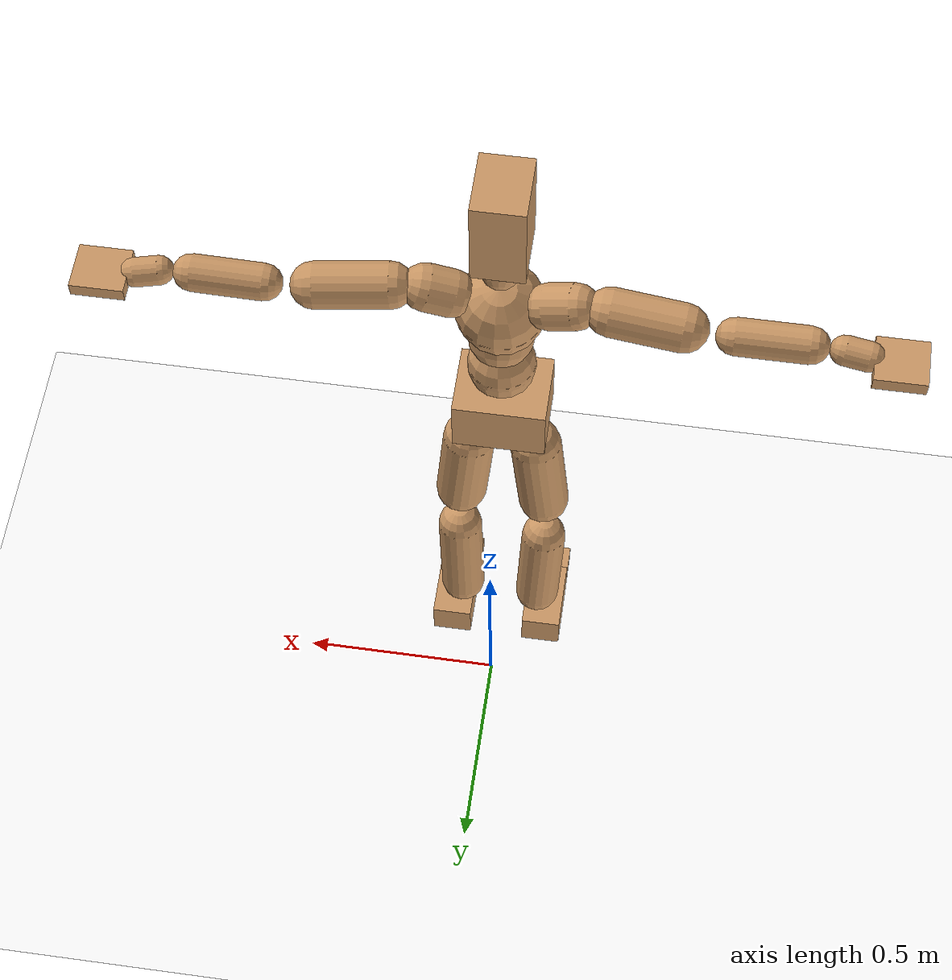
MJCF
<mujoco model="humanoid">
  <option integrator="implicitfast" />

  <visual>
    <global offwidth="1280" offheight="960" />
    <headlight active="1" ambient="0.34 0.34 0.34" diffuse="0.5 0.5 0.5" />
  </visual>

  <default>
    <joint damping="2" stiffness="2" armature="0.01" limited="true" solimplimit="0 .99 .01" />
    <geom condim="1" friction="0.7 0.005 0.0001" solimp=".99 .99 .003" solref="0.015 1" margin="0.001" rgba="0.8 0.6 .4 1" />
    <default class="smplcontact">
      <geom condim="3" friction="1. 0.005 0.0001" solref="0.015 1" solimp="0.98 0.98 0.001" priority="1" />
    </default>
    <default class="stiff_medium">
      <joint stiffness="10" />
    </default>
    <default class="stiff_medium_higher">
      <joint stiffness="50" />
    </default>
    <default class="stiff_high">
      <joint stiffness="100" />
    </default>
  </default>

  <asset>
    <texture type="skybox" builtin="gradient" rgb1="0.99 0.99 0.99" rgb2="0.608 0.828 0.892" width="100" />
    <texture builtin="flat" height="1278" mark="cross" markrgb="1 1 1" name="texgeom" random="0.01" rgb1="0.8 0.6 0.4" rgb2="0.8 0.6 0.4" type="cube" width="127" />
    <texture name="texplane" type="2d" builtin="checker" markrgb="1 1 1" rgb1="0.756 0.772 0.76" rgb2="0.6 0.6 0.6" width="100" height="100" />
    <material name="MatPlane" reflectance="0.5" texture="texplane" texrepeat="1 1" texuniform="true" />
    <material name="geom" texture="texgeom" texuniform="true" />
  </asset>

  <worldbody>
    <light name="tracking_light" pos="0 0 7" dir="0 0 -1" directional="true" cutoff="100" exponent="1" diffuse="1 1 1" specular="0.1 0.1 0.1" mode="trackcom" />
    <camera name="back" pos="0 3 2.4" xyaxes="-1 0 0 0 -1 2" mode="trackcom" />
    <camera name="side" pos="-3 0 2.4" xyaxes="0 -1 0 1 0 2" mode="trackcom" />
    <camera name="front_side" pos="-2.8 -2.8 0.8" xyaxes="0.5 -0.5 0 0.1 0.1 1" mode="trackcom" />
    <geom condim="3" name="floor" pos="0 0 0" rgba="1 1 1 1" size="100 100 .2" type="plane" material="MatPlane" />
    <body name="Pelvis" pos="-0.0018 -0.2233 1.02375" euler="90 0 0">
      <site name="Pelvis" size="0.01" />
      <freejoint name="Pelvis" />
      <geom type="box" pos="-0.0000 -0.0121 -0.0055" size="0.112908 0.0762576 0.0876646" quat="1.0000 0.0000 0.0000 0.0000" density="3165.830099" name="Pelvis" />
      <body name="L_Hip" pos="0.0760191 -0.0999733 -0.00743784">
        <joint name="L_Hip_x" type="hinge" pos="0 0 0" axis="1 0 0" stiffness="13.194738699999998" range="-160.0 22.92" class="stiff_medium" damping="20.649044147317586" armature="0.014362055256930911"/>
        <joint name="L_Hip_y" type="hinge" pos="0 0 0" axis="0 1 0" stiffness="13.182851499999998" range="-70.0 70.0" class="stiff_medium" damping="13.492078416678233" armature="0.013808558793353215"/>
        <joint name="L_Hip_z" type="hinge" pos="0 0 0" axis="0 0 1" stiffness="13.185234099999999" range="-28.65 90.0" class="stiff_medium" damping="13.76146212609762" armature="0.014362872772051824"/>
        <geom type="capsule" density="2040.816327" fromto="0.00754722 -0.082035 -0.00098442 0.0299701 -0.328359 -0.00393768" size="0.0649563" name="L_Hip" />
        <body name="L_Knee" pos="0.0375173 -0.410394 -0.0049221">
          <joint name="L_Knee_x" type="hinge" pos="0 0 0" axis="1 0 0" range="-5.16 171.89" damping="10.953899415005802" armature="0.01426374939642861" stiffness="2.62877744"/>
          <joint name="L_Knee_y" type="hinge" pos="0 0 0" axis="0 1 0" range="-4.58 6.88" damping="10.753581550286581" armature="0.013714310366782513" stiffness="2.63501028"/>
          <joint name="L_Knee_z" type="hinge" pos="0 0 0" axis="0 0 1" range="-6.88 4.58" damping="10.947222760873162" armature="0.014267685415889964" stiffness="2.6248495"/>
          <geom type="capsule" density="1234.567901" fromto="-0.00295326 -0.0870665 -0.00951606 -0.0119224 -0.348266 -0.038283" size="0.0571404" name="L_Knee" />
          <body name="L_Ankle" pos="-0.0148757 -0.435332 -0.0477991">
            <joint name="L_Ankle_x" type="hinge" pos="0 0 0" axis="1 0 0" range="-45.84 45.84" class="stiff_medium" damping="7.993118864081614" armature="0.0137706035724054" stiffness="12.887748899999998"/>
            <joint name="L_Ankle_y" type="hinge" pos="0 0 0" axis="0 1 0" range="-74.48 22.92" class="stiff_medium" damping="3.993175958670596" armature="0.01374729853829439" stiffness="12.887747599999999"/>
            <joint name="L_Ankle_z" type="hinge" pos="0 0 0" axis="0 0 1" range="-4.58 4.58" class="stiff_medium" damping="7.941906606409365" armature="0.013594718855622703" stiffness="12.8877416"/>
            <geom type="box" pos="0.0254855 -0.0261418 0.02647" size="0.0510145 0.0490077 0.089777" quat="1.0000 0.0000 0.0000 0.0000" density="449.071558" name="L_Ankle" class="smplcontact" />
            <body name="L_Toe" pos="0.0288763 -0.061034 0.13049">
              <joint name="L_Toe_x" type="hinge" pos="0 0 0" axis="1 0 0" range="-91.67 22.92" armature="0.013506233843673693" damping="2.638672120411487" stiffness="2.57754702"/>
              <joint name="L_Toe_y" type="hinge" pos="0 0 0" axis="0 1 0" range="-4.58 4.58" armature="0.013399259744653927" damping="2.6282016926070466" stiffness="2.5775469200000005"/>
              <joint name="L_Toe_z" type="hinge" pos="0 0 0" axis="0 0 1" range="-4.58 4.58" armature="0.013182955718647351" damping="2.6069014089825724" stiffness="2.577546"/>
              <geom type="box" pos="-0.0032814 0.0060159 0.0271262" size="0.0504864 0.021124 0.0523875" quat="1.0000 0.0000 0.0000 0.0000" density="423.206892" name="L_Toe" class="smplcontact" />
            </body>
          </body>
        </body>
      </body>
      <body name="R_Hip" pos="-0.0740503 -0.0989889 -0.00470334">
        <joint name="R_Hip_x" type="hinge" pos="0 0 0" axis="1 0 0" stiffness="13.194738699999998" range="-160.0 22.92" class="stiff_medium" damping="20.649044147317586" armature="0.014362055256930911"/>
        <joint name="R_Hip_y" type="hinge" pos="0 0 0" axis="0 1 0" stiffness="13.182851499999998" range="-70.0 70.0" class="stiff_medium" damping="13.492078416678233" armature="0.013808558793353215"/>
        <joint name="R_Hip_z" type="hinge" pos="0 0 0" axis="0 0 1" stiffness="13.185234099999999" range="-90.0 28.65" class="stiff_medium" damping="13.76146212609762" armature="0.014362872772051824"/>
        <geom type="capsule" density="2040.816327" fromto="-0.00842226 -0.0836757 -0.00196884 -0.0334703 -0.334812 -0.00776598" size="0.0640057" name="R_Hip" />
        <body name="R_Knee" pos="-0.0418925 -0.418488 -0.00973482">
          <joint name="R_Knee_x" type="hinge" pos="0 0 0" axis="1 0 0" range="-5.16 171.89" damping="10.953899415005802" armature="0.01426374939642861" stiffness="2.62877744"/>
          <joint name="R_Knee_y" type="hinge" pos="0 0 0" axis="0 1 0" range="-6.88 4.58" damping="10.753581550286581" armature="0.013714310366782513" stiffness="2.63501028"/>
          <joint name="R_Knee_z" type="hinge" pos="0 0 0" axis="0 0 1" range="-4.58 6.88" damping="10.947222760873162" armature="0.014267685415889964" stiffness="2.6248495"/>
          <geom type="capsule" density="1234.567901" fromto="0.00350016 -0.0871759 -0.0092973 0.0137819 -0.348594 -0.0369704" size="0.0571404" name="R_Knee" />
          <body name="R_Ankle" pos="0.017282 -0.43577 -0.0462677">
            <joint name="R_Ankle_x" type="hinge" pos="0 0 0" axis="1 0 0" range="-45.84 45.84" class="stiff_medium" damping="7.993118864081614" armature="0.0137706035724054" stiffness="12.887748899999998"/>
            <joint name="R_Ankle_y" type="hinge" pos="0 0 0" axis="0 1 0" range="-22.92 74.48" class="stiff_medium" damping="3.993175958670596" armature="0.01374729853829439" stiffness="12.887747599999999"/>
            <joint name="R_Ankle_z" type="hinge" pos="0 0 0" axis="0 0 1" range="-4.58 4.58" class="stiff_medium" damping="7.941906606409365" armature="0.013594718855622703" stiffness="12.8877416"/>
            <geom type="box" pos="-0.0231886 -0.0190321 0.0280013" size="0.0510145 0.0504864 0.0913613" quat="1.0000 0.0000 0.0000 0.0000" density="434.700981" name="R_Ankle" class="smplcontact" />
            <body name="R_Toe" pos="-0.0277825 -0.0526118 0.134866">
              <joint name="R_Toe_x" type="hinge" pos="0 0 0" axis="1 0 0" range="-91.67 22.92" armature="0.013506233843673693" damping="2.638672120411487" stiffness="2.57754702"/>
              <joint name="R_Toe_y" type="hinge" pos="0 0 0" axis="0 1 0" range="-4.58 4.58" armature="0.013399259744653927" damping="2.6282016926070466" stiffness="2.5775469200000005"/>
              <joint name="R_Toe_z" type="hinge" pos="0 0 0" axis="0 0 1" range="-4.58 4.58" armature="0.013182955718647351" damping="2.6069014089825724" stiffness="2.577546"/>
              <geom type="box" pos="0.00459396 0.0049221 0.0248293" size="0.050592 0.0228139 0.0520707" quat="1.0000 0.0000 0.0000 0.0000" density="407.384095" name="R_Toe" class="smplcontact" />
            </body>
          </body>
        </body>
      </body>
      <body name="Torso" pos="-0.0026875 0.117175 -0.0287025">
        <joint name="Torso_x" type="hinge" pos="0 0 0" axis="1 0 0" range="-25.78 57.3" class="stiff_medium" damping="19.087234065899796" armature="0.01305491328799454" stiffness="12.4030784"/>
        <joint name="Torso_y" type="hinge" pos="0 0 0" axis="0 1 0" range="-57.3 57.3" class="stiff_high" damping="26.527458762293044" armature="0.014306001974653582" stiffness="122.97392199999999"/>
        <joint name="Torso_z" type="hinge" pos="0 0 0" axis="0 0 1" range="-34.38 34.38" class="stiff_high" damping="25.862041282560547" armature="0.013486851926014199" stiffness="123.98096734693877"/>
        <geom type="capsule" density="2040.816327" fromto="0.0026875 0.06536 0.0005375 0.003225 0.0798725 0.000645" size="0.0812218" name="Torso" />
        <body name="Spine" pos="0.0059125 0.14534 0.0011825">
          <joint name="Spine_x" type="hinge" pos="0 0 0" axis="1 0 0" stiffness="12.308747599999998" range="-25.78 57.3" class="stiff_medium" damping="18.778509024511553" armature="0.012732856073609236"/>
          <joint name="Spine_y" type="hinge" pos="0 0 0" axis="0 1 0" stiffness="12.293305400000001" range="-57.3 57.3" class="stiff_high" damping="10.612196069256724" armature="0.01431402877266789"/>
          <joint name="Spine_z" type="hinge" pos="0 0 0" axis="0 0 1" stiffness="24.520057199999997" range="-34.38 34.38" class="stiff_high" damping="15.499866589337397" armature="0.013608239523604385"/>
          <geom type="capsule" density="2040.816327" fromto="0.0007525 0.025585 0.012255 0.00086 0.0312825 0.01505" size="0.0797431" name="Spine" />
          <body name="Chest" pos="0.0016125 0.0568675 0.027305">
            <joint name="Chest_x" type="hinge" pos="0 0 0" axis="1 0 0" stiffness="12.178478775510204" range="-25.78 57.3" class="stiff_medium" damping="18.553975876982793" armature="0.012563146192898698"/>
            <joint name="Chest_y" type="hinge" pos="0 0 0" axis="0 1 0" stiffness="12.651375918367346" range="-57.3 57.3" class="stiff_high" damping="10.769275792813058" armature="0.014323701559469904"/>
            <joint name="Chest_z" type="hinge" pos="0 0 0" axis="0 0 1" stiffness="24.329055999999998" range="-34.38 34.38" class="stiff_high" damping="15.486013940070873" armature="0.013690570224165375"/>
            <geom type="capsule" density="2040.816327" fromto="-0.0009675 0.073315 -0.0185975 -0.001075 0.0895475 -0.02279" size="0.105831" name="Chest" />
            <body name="Neck" pos="-0.00301 0.229942 -0.0461175">
              <joint name="Neck_x" type="hinge" pos="0 0 0" axis="1 0 0" range="-28.65 57.3" class="stiff_medium_higher" damping="10.967769260220999" armature="0.011015252001251436" stiffness="54.602456"/>
              <joint name="Neck_y" type="hinge" pos="0 0 0" axis="0 1 0" range="-40.11 40.11" class="stiff_medium_higher" damping="10.99963177319961" armature="0.011108172525434038" stiffness="54.460758"/>
              <joint name="Neck_z" type="hinge" pos="0 0 0" axis="0 0 1" range="-40.11 40.11" class="stiff_medium_higher" damping="10.924611862607046" armature="0.011006091327845966" stiffness="54.21867800000001"/>
              <geom type="capsule" density="1000" fromto="0.001075 0.013975 0.0110725 0.0044075 0.0559 0.0441825" size="0.0460503" name="Neck" />
              <body name="Head" pos="0.00529776 0.066222 0.0522644">
                <joint name="Head_x" type="hinge" pos="0 0 0" axis="1 0 0" range="-28.65 57.3" class="stiff_medium_higher" damping="2.17486746265936" armature="0.010976094191517826" stiffness="53.867619"/>
                <joint name="Head_y" type="hinge" pos="0 0 0" axis="0 1 0" range="-40.11 40.11" class="stiff_medium_higher" damping="2.174865137118896" armature="0.010976067254592338" stiffness="53.867636"/>
                <joint name="Head_z" type="hinge" pos="0 0 0" axis="0 0 1" range="-40.11 40.11" class="stiff_medium_higher" damping="2.174867315468954" armature="0.01097609637353057" stiffness="53.86760100000001"/>
                <geom type="box" pos="-0.00427896 0.0892469 -0.0118181" size="0.0617393 0.11757 0.0774288" quat="1.0000 0.0000 0.0000 0.0000" density="1018.069894" name="Head" />
                <geom type="capsule" name="nose" size="0.020376 0.010188" pos="0 0.071316 0.05094" quat="1 0 0 0" mass="0" contype="0" conaffinity="0" />
              </body>
            </body>
            <body name="L_Thorax" pos="0.0861914 0.133115 -0.0372986">
              <joint name="L_Thorax_x" type="hinge" pos="0 0 0" axis="1 0 0" range="-10.89 4.58" class="stiff_medium_higher" damping="27.11326447505311" armature="0.013956722774549367" stiffness="65.8400545"/>
              <joint name="L_Thorax_y" type="hinge" pos="0 0 0" axis="0 1 0" range="-28.65 17.19" class="stiff_medium_higher" damping="27.522975283899388" armature="0.01436957428260833" stiffness="65.89566899999998"/>
              <joint name="L_Thorax_z" type="hinge" pos="0 0 0" axis="0 0 1" range="-31.51 40.11" class="stiff_medium_higher" damping="27.52311282319053" armature="0.014369947637794379" stiffness="65.8946155"/>
              <geom type="capsule" density="1000" fromto="0.0199072 0.00667218 -0.00196884 0.0796286 0.0266887 -0.00776598" size="0.055028" name="L_Thorax" />
              <body name="L_Shoulder" pos="0.0995358 0.0333609 -0.00973482">
                <joint name="L_Shoulder_x" type="hinge" pos="0 0 0" axis="1 0 0" range="-97.4 97.4" class="stiff_medium" damping="8.084378457935793" armature="0.013792928932522217" stiffness="13.162375399999998"/>
                <joint name="L_Shoulder_y" type="hinge" pos="0 0 0" axis="0 1 0" range="-108.86 80.21" class="stiff_medium" damping="8.250802302934279" armature="0.014354136598393663" stiffness="13.1738522"/>
                <joint name="L_Shoulder_z" type="hinge" pos="0 0 0" axis="0 0 1" range="-97.4 85.94" class="stiff_medium" damping="8.25104633450809" armature="0.014354613054014545" stiffness="13.174194200000002"/>
                <geom type="capsule" density="1000" fromto="0.0567682 -0.00284388 -0.0060159 0.227182 -0.0111568 -0.0240636" size="0.0546055" name="L_Shoulder" />
                <body name="L_Elbow" pos="0.28395 -0.0140006 -0.0300795">
                  <joint name="L_Elbow_x" type="hinge" pos="0 0 0" axis="1 0 0" range="-17.19 4.58" damping="6.664549534244376" armature="0.013534974325857825" stiffness="2.6252710599999993"/>
                  <joint name="L_Elbow_y" type="hinge" pos="0 0 0" axis="0 1 0" range="-180.0 17.19" damping="6.845331623741281" armature="0.014279135320378049" stiffness="2.62528866"/>
                  <joint name="L_Elbow_z" type="hinge" pos="0 0 0" axis="0 0 1" range="-100.84 4.58" damping="6.84560487814114" armature="0.014281634478115576" stiffness="2.6250388199999994"/>
                  <geom type="capsule" density="1000" fromto="0.0544712 0.00196884 -0.00021876 0.218104 0.00787536 -0.00098442" size="0.0427761" name="L_Elbow" />
                  <body name="L_Wrist" pos="0.272575 0.0098442 -0.00131256">
                    <joint name="L_Wrist_x" type="hinge" pos="0 0 0" axis="1 0 0" range="-180.0 22.92" armature="0.013466971181283864" damping="2.6433072637556903" stiffness="2.59415172"/>
                    <joint name="L_Wrist_y" type="hinge" pos="0 0 0" axis="0 1 0" range="-17.19 17.19" armature="0.014030870841308905" damping="2.6993291742210164" stiffness="2.5965523"/>
                    <joint name="L_Wrist_z" type="hinge" pos="0 0 0" axis="0 0 1" range="-22.92 22.92" armature="0.01406214509046314" damping="2.7019332702114127" stiffness="2.59577872"/>
                    <geom type="capsule" density="1000" fromto="0.0183758 -0.00175008 -0.0032814 0.0735034 -0.0071097 -0.0131256" size="0.0335872" name="L_Wrist" class="smplcontact" />
                    <body name="L_Hand" pos="0.0918792 -0.00896916 -0.0162976">
                      <joint name="L_Hand_x" type="hinge" pos="0 0 0" axis="1 0 0" range="-17.19 17.19" armature="0.01318563143132848" damping="2.607168785975738" stiffness="2.5775516"/>
                      <joint name="L_Hand_y" type="hinge" pos="0 0 0" axis="0 1 0" range="-51.57 51.57" armature="0.013645975729091174" damping="2.65228970133528" stiffness="2.57755136"/>
                      <joint name="L_Hand_z" type="hinge" pos="0 0 0" axis="0 0 1" range="-91.67 91.67" armature="0.01376868915109434" damping="2.6641883854362156" stiffness="2.57755102"/>
                      <geom type="box" pos="0.0539243 0.0010938 -0.00634404" size="0.0617877 0.016688 0.0568236" quat="1.0000 0.0000 0.0000 0.0000" density="400.552564" name="L_Hand" class="smplcontact" />
                    </body>
                  </body>
                </body>
              </body>
            </body>
            <body name="R_Thorax" pos="-0.0894728 0.129943 -0.0422207">
              <joint name="R_Thorax_x" type="hinge" pos="0 0 0" axis="1 0 0" range="-10.89 4.58" class="stiff_medium_higher" damping="27.11326447505311" armature="0.013956722774549367" stiffness="65.8400545"/>
              <joint name="R_Thorax_y" type="hinge" pos="0 0 0" axis="0 1 0" range="-17.19 28.65" class="stiff_medium_higher" damping="27.522975283899388" armature="0.01436957428260833" stiffness="65.89566899999998"/>
              <joint name="R_Thorax_z" type="hinge" pos="0 0 0" axis="0 0 1" range="-40.11 31.51" class="stiff_medium_higher" damping="27.52311282319053" armature="0.014369947637794379" stiffness="65.8946155"/>
              <geom type="capsule" density="1000" fromto="-0.021001 0.0071097 -0.00196884 -0.0840038 0.0284388 -0.00798474" size="0.0539718" name="R_Thorax" />
              <body name="R_Shoulder" pos="-0.105005 0.0356579 -0.00995358">
                <joint name="R_Shoulder_x" type="hinge" pos="0 0 0" axis="1 0 0" range="-97.4 97.4" class="stiff_medium" damping="8.084378457935793" armature="0.013792928932522217" stiffness="13.162375399999998"/>
                <joint name="R_Shoulder_y" type="hinge" pos="0 0 0" axis="0 1 0" range="-80.21 108.86" class="stiff_medium" damping="8.250802302934279" armature="0.014354136598393663" stiffness="13.1738522"/>
                <joint name="R_Shoulder_z" type="hinge" pos="0 0 0" axis="0 0 1" range="-85.94 97.4" class="stiff_medium" damping="8.25104633450809" armature="0.014354613054014545" stiffness="13.174194200000002"/>
                <geom type="capsule" density="1000" fromto="-0.0554557 -0.00295326 -0.00470334 -0.222041 -0.0117037 -0.018704" size="0.0560842" name="R_Shoulder" />
                <body name="R_Elbow" pos="-0.277497 -0.0145475 -0.0234073">
                  <joint name="R_Elbow_x" type="hinge" pos="0 0 0" axis="1 0 0" range="-17.19 4.58" damping="6.664549534244376" armature="0.013534974325857825" stiffness="2.6252710599999993"/>
                  <joint name="R_Elbow_y" type="hinge" pos="0 0 0" axis="0 1 0" range="-17.19 180.0" damping="6.845331623741281" armature="0.014279135320378049" stiffness="2.62528866"/>
                  <joint name="R_Elbow_z" type="hinge" pos="0 0 0" axis="0 0 1" range="-4.58 100.84" damping="6.84560487814114" armature="0.014281634478115576" stiffness="2.6250388199999994"/>
                  <geom type="capsule" density="1000" fromto="-0.0558932 0.00175008 -0.00120318 -0.223354 0.00678156 -0.00481272" size="0.043093" name="R_Elbow" />
                  <body name="R_Wrist" pos="-0.279247 0.00853164 -0.00612528">
                    <joint name="R_Wrist_x" type="hinge" pos="0 0 0" axis="1 0 0" range="-180.0 22.92" armature="0.013466971181283864" damping="2.6433072637556903" stiffness="2.59415172"/>
                    <joint name="R_Wrist_y" type="hinge" pos="0 0 0" axis="0 1 0" range="-17.19 17.19" armature="0.014030870841308905" damping="2.6993291742210164" stiffness="2.5965523"/>
                    <joint name="R_Wrist_z" type="hinge" pos="0 0 0" axis="0 0 1" range="-22.92 22.92" armature="0.01406214509046314" damping="2.7019332702114127" stiffness="2.59577872"/>
                    <geom type="capsule" density="1000" fromto="-0.0184852 -0.00131256 -0.00229698 -0.0740503 -0.00535962 -0.00907854" size="0.0344321" name="R_Wrist" class="smplcontact" />
                    <body name="R_Hand" pos="-0.0925355 -0.00667218 -0.0112661">
                      <joint name="R_Hand_x" type="hinge" pos="0 0 0" axis="1 0 0" range="-17.19 17.19" armature="0.01318563143132848" damping="2.607168785975738" stiffness="2.5775516"/>
                      <joint name="R_Hand_y" type="hinge" pos="0 0 0" axis="0 1 0" range="-51.57 51.57" armature="0.013645975729091174" damping="2.65228970133528" stiffness="2.57755136"/>
                      <joint name="R_Hand_z" type="hinge" pos="0 0 0" axis="0 0 1" range="-91.67 91.67" armature="0.01376868915109434" damping="2.6641883854362156" stiffness="2.57755102"/>
                      <geom type="box" pos="-0.0505336 -0.00098442 -0.00864102" size="0.0600978 0.0173217 0.0576685" quat="1.0000 0.0000 0.0000 0.0000" density="403.679611" name="R_Hand" class="smplcontact" />
                    </body>
                  </body>
                </body>
              </body>
            </body>
          </body>
        </body>
      </body>
    </body>
  </worldbody>
  <actuator>
    <general name="L_Hip_x" joint="L_Hip_x" biastype="affine" gainprm="379.1245116418421" biasprm="-284.1153950134688 -237.50529659999998 -2.7532058863090114" ctrllimited="true" ctrlrange="-1 1" forcerange="-475.01059319999996 475.01059319999996" />
    <general name="L_Hip_y" joint="L_Hip_y" biastype="affine" gainprm="289.9060459803563" biasprm="0.0 -237.291327 -2.6984156833356465" ctrllimited="true" ctrlrange="-1 1" forcerange="-474.582654 474.582654" />
    <general name="L_Hip_z" joint="L_Hip_z" biastype="affine" gainprm="245.73977967208128" biasprm="127.06393158771331 -237.33421379999996 -2.7522924252195238" ctrllimited="true" ctrlrange="-1 1" forcerange="-474.6684275999999 474.6684275999999" />
    <general name="L_Knee_x" joint="L_Knee_x" biastype="affine" gainprm="365.54397613279417" biasprm="344.23692256775354 -236.5899696 -2.7384748537514505" ctrllimited="true" ctrlrange="-1 1" forcerange="-473.1799392 473.1799392" />
    <general name="L_Knee_y" joint="L_Knee_y" biastype="affine" gainprm="23.716839406744235" biasprm="4.7599241392244105 -237.1509252 -2.6883953875716453" ctrllimited="true" ctrlrange="-1 1" forcerange="-474.3018504 474.3018504" />
    <general name="L_Knee_z" joint="L_Knee_z" biastype="affine" gainprm="23.62538565062938" biasprm="-4.741569545937834 -236.23645499999998 -2.7368056902182905" ctrllimited="true" ctrlrange="-1 1" forcerange="-472.47290999999996 472.47290999999996" />
    <general name="L_Ankle_x" joint="L_Ankle_x" biastype="affine" gainprm="92.79862725264046" biasprm="0.0 -115.98974009999998 -2.6643729546938713" ctrllimited="true" ctrlrange="-1 1" forcerange="-231.97948019999995 231.97948019999995" />
    <general name="L_Ankle_y" joint="L_Ankle_y" biastype="affine" gainprm="98.58840949690256" biasprm="-52.189100550927066 -115.98972839999999 -2.6621173057803973" ctrllimited="true" ctrlrange="-1 1" forcerange="-231.97945679999998 231.97945679999998" />
    <general name="L_Ankle_z" joint="L_Ankle_z" biastype="affine" gainprm="9.271759862010496" biasprm="0.0 -115.9896744 -2.647302202136455" ctrllimited="true" ctrlrange="-1 1" forcerange="-231.9793488 231.9793488" />
    <general name="L_Toe_x" joint="L_Toe_x" biastype="affine" gainprm="92.79043028253913" biasprm="-55.671019128410556 -92.79169272 -1.0554688481645949" ctrllimited="true" ctrlrange="-1 1" forcerange="-185.58338544 185.58338544" />
    <general name="L_Toe_y" joint="L_Toe_y" biastype="affine" gainprm="7.41740386082998" biasprm="0.0 -92.79168912000002 -1.0512806770428187" ctrllimited="true" ctrlrange="-1 1" forcerange="-185.58337824000003 185.58337824000003" />
    <general name="L_Toe_z" joint="L_Toe_z" biastype="affine" gainprm="7.417401213347017" biasprm="0.0 -92.79165599999999 -1.042760563593029" ctrllimited="true" ctrlrange="-1 1" forcerange="-185.58331199999998 185.58331199999998" />
    <general name="R_Hip_x" joint="R_Hip_x" biastype="affine" gainprm="379.1245116418421" biasprm="-284.1153950134688 -237.50529659999998 -2.7532058863090114" ctrllimited="true" ctrlrange="-1 1" forcerange="-475.01059319999996 475.01059319999996" />
    <general name="R_Hip_y" joint="R_Hip_y" biastype="affine" gainprm="289.9060459803563" biasprm="0.0 -237.291327 -2.6984156833356465" ctrllimited="true" ctrlrange="-1 1" forcerange="-474.582654 474.582654" />
    <general name="R_Hip_z" joint="R_Hip_z" biastype="affine" gainprm="245.73977967208128" biasprm="-127.06393158771331 -237.33421379999996 -2.7522924252195238" ctrllimited="true" ctrlrange="-1 1" forcerange="-474.6684275999999 474.6684275999999" />
    <general name="R_Knee_x" joint="R_Knee_x" biastype="affine" gainprm="365.54397613279417" biasprm="344.23692256775354 -236.5899696 -2.7384748537514505" ctrllimited="true" ctrlrange="-1 1" forcerange="-473.1799392 473.1799392" />
    <general name="R_Knee_y" joint="R_Knee_y" biastype="affine" gainprm="23.716839406744235" biasprm="-4.7599241392244105 -237.1509252 -2.6883953875716453" ctrllimited="true" ctrlrange="-1 1" forcerange="-474.3018504 474.3018504" />
    <general name="R_Knee_z" joint="R_Knee_z" biastype="affine" gainprm="23.62538565062938" biasprm="4.741569545937834 -236.23645499999998 -2.7368056902182905" ctrllimited="true" ctrlrange="-1 1" forcerange="-472.47290999999996 472.47290999999996" />
    <general name="R_Ankle_x" joint="R_Ankle_x" biastype="affine" gainprm="92.79862725264046" biasprm="0.0 -115.98974009999998 -2.6643729546938713" ctrllimited="true" ctrlrange="-1 1" forcerange="-231.97948019999995 231.97948019999995" />
    <general name="R_Ankle_y" joint="R_Ankle_y" biastype="affine" gainprm="98.58840949690256" biasprm="52.189100550927066 -115.98972839999999 -2.6621173057803973" ctrllimited="true" ctrlrange="-1 1" forcerange="-231.97945679999998 231.97945679999998" />
    <general name="R_Ankle_z" joint="R_Ankle_z" biastype="affine" gainprm="9.271759862010496" biasprm="0.0 -115.9896744 -2.647302202136455" ctrllimited="true" ctrlrange="-1 1" forcerange="-231.9793488 231.9793488" />
    <general name="R_Toe_x" joint="R_Toe_x" biastype="affine" gainprm="92.79043028253913" biasprm="-55.671019128410556 -92.79169272 -1.0554688481645949" ctrllimited="true" ctrlrange="-1 1" forcerange="-185.58338544 185.58338544" />
    <general name="R_Toe_y" joint="R_Toe_y" biastype="affine" gainprm="7.41740386082998" biasprm="0.0 -92.79168912000002 -1.0512806770428187" ctrllimited="true" ctrlrange="-1 1" forcerange="-185.58337824000003 185.58337824000003" />
    <general name="R_Toe_z" joint="R_Toe_z" biastype="affine" gainprm="7.417401213347017" biasprm="0.0 -92.79165599999999 -1.042760563593029" ctrllimited="true" ctrlrange="-1 1" forcerange="-185.58331199999998 185.58331199999998" />
    <general name="Torso_x" joint="Torso_x" biastype="affine" gainprm="215.8164728143828" biasprm="81.87933585832143 -297.6738816 -5.089929084239945" ctrllimited="true" ctrlrange="-1 1" forcerange="-446.5108224 446.5108224" />
    <general name="Torso_y" joint="Torso_y" biastype="affine" gainprm="295.1591530328797" biasprm="0.0 -295.1374128 -5.305491752458609" ctrllimited="true" ctrlrange="-1 1" forcerange="-442.7061192 442.7061192" />
    <general name="Torso_z" joint="Torso_z" biastype="affine" gainprm="178.54574393904215" biasprm="0.0 -297.55432163265306 -5.172408256512109" ctrllimited="true" ctrlrange="-1 1" forcerange="-446.3314824489796 446.3314824489796" />
    <general name="Spine_x" joint="Spine_x" biastype="affine" gainprm="214.17509477280242" biasprm="81.25660793498713 -295.4099424 -5.007602406536415" ctrllimited="true" ctrlrange="-1 1" forcerange="-443.11491359999997 443.11491359999997" />
    <general name="Spine_y" joint="Spine_y" biastype="affine" gainprm="295.0610626079346" biasprm="0.0 -295.03932960000003 -5.306098034628362" ctrllimited="true" ctrlrange="-1 1" forcerange="-442.5589944 442.5589944" />
    <general name="Spine_z" joint="Spine_z" biastype="affine" gainprm="176.55741634725854" biasprm="0.0 -294.24068639999996 -5.1666221964457995" ctrllimited="true" ctrlrange="-1 1" forcerange="-441.3610296 441.3610296" />
    <general name="Chest_x" joint="Chest_x" biastype="affine" gainprm="211.90838667724907" biasprm="80.3966339439924 -292.2834906122449 -4.947726900528745" ctrllimited="true" ctrlrange="-1 1" forcerange="-438.4252359183674 438.4252359183674" />
    <general name="Chest_y" joint="Chest_y" biastype="affine" gainprm="303.655388072105" biasprm="0.0 -303.63302204081634 -5.384637896406529" ctrllimited="true" ctrlrange="-1 1" forcerange="-455.4495330612245 455.4495330612245" />
    <general name="Chest_z" joint="Chest_z" biastype="affine" gainprm="175.18210640747478" biasprm="0.0 -291.948672 -5.162004646690291" ctrllimited="true" ctrlrange="-1 1" forcerange="-437.923008 437.923008" />
    <general name="Neck_x" joint="Neck_x" biastype="affine" gainprm="29.48749817019655" biasprm="9.829166056732182 -39.31376832 -0.87742154081768" ctrllimited="true" ctrlrange="-1 1" forcerange="-78.62753664 78.62753664" />
    <general name="Neck_y" joint="Neck_y" biastype="affine" gainprm="27.45024390626341" biasprm="0.0 -39.21174576 -0.8799705418559688" ctrllimited="true" ctrlrange="-1 1" forcerange="-78.42349152 78.42349152" />
    <general name="Neck_z" joint="Neck_z" biastype="affine" gainprm="27.328226598960637" biasprm="0.0 -39.037448160000004 -0.8739689490085637" ctrllimited="true" ctrlrange="-1 1" forcerange="-78.07489632000001 78.07489632000001" />
    <general name="Head_x" joint="Head_x" biastype="affine" gainprm="19.393771306982295" biasprm="6.464590435660765 -25.85645712 -0.869946985063744" ctrllimited="true" ctrlrange="-1 1" forcerange="-51.71291424 51.71291424" />
    <general name="Head_y" joint="Head_y" biastype="affine" gainprm="18.100858932270896" biasprm="0.0 -25.85646528 -0.8699460548475584" ctrllimited="true" ctrlrange="-1 1" forcerange="-51.71293056 51.71293056" />
    <general name="Head_z" joint="Head_z" biastype="affine" gainprm="18.10084717140464" biasprm="0.0 -25.856448480000005 -0.8699469261875816" ctrllimited="true" ctrlrange="-1 1" forcerange="-51.71289696000001 51.71289696000001" />
    <general name="L_Thorax_x" joint="L_Thorax_x" biastype="affine" gainprm="21.332370065039832" biasprm="-8.70118003299298 -158.0161308 -2.169061158004249" ctrllimited="true" ctrlrange="-1 1" forcerange="-316.0322616 316.0322616" />
    <general name="L_Thorax_y" joint="L_Thorax_y" biastype="affine" gainprm="63.26450204808458" biasprm="-15.816125512021145 -158.14960559999997 -2.2018380227119514" ctrllimited="true" ctrlrange="-1 1" forcerange="-316.29921119999995 316.29921119999995" />
    <general name="L_Thorax_z" joint="L_Thorax_z" biastype="affine" gainprm="98.8423036157299" biasprm="11.868804958046315 -158.14707719999998 -2.2018490258552426" ctrllimited="true" ctrlrange="-1 1" forcerange="-316.29415439999997 316.29415439999997" />
    <general name="L_Shoulder_x" joint="L_Shoulder_x" biastype="affine" gainprm="107.40186797882616" biasprm="0.0 -63.17940192 -2.155834255449545" ctrllimited="true" ctrlrange="-1 1" forcerange="-126.35880384 126.35880384" />
    <general name="L_Shoulder_y" joint="L_Shoulder_y" biastype="affine" gainprm="104.33355852545256" biasprm="-15.809787125161135 -63.23449056 -2.2002139474491407" ctrllimited="true" ctrlrange="-1 1" forcerange="-126.46898112 126.46898112" />
    <general name="L_Shoulder_z" joint="L_Shoulder_z" biastype="affine" gainprm="101.17422756738316" biasprm="-6.324079022156723 -63.23613216000001 -2.200279022535491" ctrllimited="true" ctrlrange="-1 1" forcerange="-126.47226432000002 126.47226432000002" />
    <general name="L_Elbow_x" joint="L_Elbow_x" biastype="affine" gainprm="17.954877764368458" biasprm="-10.400138199755919 -94.50975815999998 -1.0663279254791003" ctrllimited="true" ctrlrange="-1 1" forcerange="-189.01951631999995 189.01951631999995" />
    <general name="L_Elbow_y" joint="L_Elbow_y" biastype="affine" gainprm="162.6341792496176" biasprm="-134.2789731914917 -94.51039175999999 -1.095253059798605" ctrllimited="true" ctrlrange="-1 1" forcerange="-189.02078351999998 189.02078351999998" />
    <general name="L_Elbow_z" joint="L_Elbow_z" biastype="affine" gainprm="86.93779377138678" biasprm="-79.38372252355997 -94.50139751999998 -1.0952967805025826" ctrllimited="true" ctrlrange="-1 1" forcerange="-189.00279503999997 189.00279503999997" />
    <general name="L_Wrist_x" joint="L_Wrist_x" biastype="affine" gainprm="27.56251532814242" biasprm="-21.336092586953537 -15.564910320000001 -1.0573229055022761" ctrllimited="true" ctrlrange="-1 1" forcerange="-31.129820640000002 31.129820640000002" />
    <general name="L_Wrist_y" joint="L_Wrist_y" biastype="affine" gainprm="4.674138418185784" biasprm="0.0 -15.5793138 -1.0797316696884065" ctrllimited="true" ctrlrange="-1 1" forcerange="-31.1586276 31.1586276" />
    <general name="L_Wrist_z" joint="L_Wrist_z" biastype="affine" gainprm="6.230327828821893" biasprm="0.0 -15.574672320000001 -1.0807733080845652" ctrllimited="true" ctrlrange="-1 1" forcerange="-31.149344640000002 31.149344640000002" />
    <general name="L_Hand_x" joint="L_Hand_x" biastype="affine" gainprm="4.6399346388733385" biasprm="0.0 -15.465309600000001 -1.0428675143902952" ctrllimited="true" ctrlrange="-1 1" forcerange="-30.930619200000002 30.930619200000002" />
    <general name="L_Hand_y" joint="L_Hand_y" biastype="affine" gainprm="13.919802620524548" biasprm="0.0 -15.465308160000001 -1.0609158805341121" ctrllimited="true" ctrlrange="-1 1" forcerange="-30.930616320000002 30.930616320000002" />
    <general name="L_Hand_z" joint="L_Hand_z" biastype="affine" gainprm="24.74361330046476" biasprm="0.0 -15.465306120000001 -1.0656753541744863" ctrllimited="true" ctrlrange="-1 1" forcerange="-30.930612240000002 30.930612240000002" />
    <general name="R_Thorax_x" joint="R_Thorax_x" biastype="affine" gainprm="21.332370065039832" biasprm="-8.70118003299298 -158.0161308 -2.169061158004249" ctrllimited="true" ctrlrange="-1 1" forcerange="-316.0322616 316.0322616" />
    <general name="R_Thorax_y" joint="R_Thorax_y" biastype="affine" gainprm="63.26450204808458" biasprm="15.816125512021136 -158.14960559999997 -2.2018380227119514" ctrllimited="true" ctrlrange="-1 1" forcerange="-316.29921119999995 316.29921119999995" />
    <general name="R_Thorax_z" joint="R_Thorax_z" biastype="affine" gainprm="98.8423036157299" biasprm="-11.868804958046315 -158.14707719999998 -2.2018490258552426" ctrllimited="true" ctrlrange="-1 1" forcerange="-316.29415439999997 316.29415439999997" />
    <general name="R_Shoulder_x" joint="R_Shoulder_x" biastype="affine" gainprm="107.40186797882616" biasprm="0.0 -63.17940192 -2.155834255449545" ctrllimited="true" ctrlrange="-1 1" forcerange="-126.35880384 126.35880384" />
    <general name="R_Shoulder_y" joint="R_Shoulder_y" biastype="affine" gainprm="104.33355852545256" biasprm="15.809787125161135 -63.23449056 -2.2002139474491407" ctrllimited="true" ctrlrange="-1 1" forcerange="-126.46898112 126.46898112" />
    <general name="R_Shoulder_z" joint="R_Shoulder_z" biastype="affine" gainprm="101.17422756738316" biasprm="6.324079022156709 -63.23613216000001 -2.200279022535491" ctrllimited="true" ctrlrange="-1 1" forcerange="-126.47226432000002 126.47226432000002" />
    <general name="R_Elbow_x" joint="R_Elbow_x" biastype="affine" gainprm="17.954877764368458" biasprm="-10.400138199755919 -94.50975815999998 -1.0663279254791003" ctrllimited="true" ctrlrange="-1 1" forcerange="-189.01951631999995 189.01951631999995" />
    <general name="R_Elbow_y" joint="R_Elbow_y" biastype="affine" gainprm="162.6341792496176" biasprm="134.2789731914917 -94.51039175999999 -1.095253059798605" ctrllimited="true" ctrlrange="-1 1" forcerange="-189.02078351999998 189.02078351999998" />
    <general name="R_Elbow_z" joint="R_Elbow_z" biastype="affine" gainprm="86.93779377138678" biasprm="79.38372252355997 -94.50139751999998 -1.0952967805025826" ctrllimited="true" ctrlrange="-1 1" forcerange="-189.00279503999997 189.00279503999997" />
    <general name="R_Wrist_x" joint="R_Wrist_x" biastype="affine" gainprm="27.56251532814242" biasprm="-21.336092586953537 -15.564910320000001 -1.0573229055022761" ctrllimited="true" ctrlrange="-1 1" forcerange="-31.129820640000002 31.129820640000002" />
    <general name="R_Wrist_y" joint="R_Wrist_y" biastype="affine" gainprm="4.674138418185784" biasprm="0.0 -15.5793138 -1.0797316696884065" ctrllimited="true" ctrlrange="-1 1" forcerange="-31.1586276 31.1586276" />
    <general name="R_Wrist_z" joint="R_Wrist_z" biastype="affine" gainprm="6.230327828821893" biasprm="0.0 -15.574672320000001 -1.0807733080845652" ctrllimited="true" ctrlrange="-1 1" forcerange="-31.149344640000002 31.149344640000002" />
    <general name="R_Hand_x" joint="R_Hand_x" biastype="affine" gainprm="4.6399346388733385" biasprm="0.0 -15.465309600000001 -1.0428675143902952" ctrllimited="true" ctrlrange="-1 1" forcerange="-30.930619200000002 30.930619200000002" />
    <general name="R_Hand_y" joint="R_Hand_y" biastype="affine" gainprm="13.919802620524548" biasprm="0.0 -15.465308160000001 -1.0609158805341121" ctrllimited="true" ctrlrange="-1 1" forcerange="-30.930616320000002 30.930616320000002" />
    <general name="R_Hand_z" joint="R_Hand_z" biastype="affine" gainprm="24.74361330046476" biasprm="0.0 -15.465306120000001 -1.0656753541744863" ctrllimited="true" ctrlrange="-1 1" forcerange="-30.930612240000002 30.930612240000002" />
  </actuator>
  <contact>
    <exclude body1="Torso" body2="Chest" />
    <exclude body1="Head" body2="Chest" />
    <exclude body1="R_Knee" body2="R_Toe" />
    <exclude body1="R_Knee" body2="L_Ankle" />
    <exclude body1="R_Knee" body2="L_Toe" />
    <exclude body1="L_Knee" body2="L_Toe" />
    <exclude body1="L_Knee" body2="R_Ankle" />
    <exclude body1="L_Knee" body2="R_Toe" />
    <exclude body1="L_Shoulder" body2="Chest" />
    <exclude body1="R_Shoulder" body2="Chest" />
  </contact>
  <sensor>
    <framelinvel name="sensor_Pelvis_framelinvel" objtype="xbody" objname="Pelvis" />
    <framelinvel name="sensor_L_Hip_framelinvel" objtype="xbody" objname="L_Hip" />
    <framelinvel name="sensor_L_Knee_framelinvel" objtype="xbody" objname="L_Knee" />
    <framelinvel name="sensor_L_Ankle_framelinvel" objtype="xbody" objname="L_Ankle" />
    <framelinvel name="sensor_L_Toe_framelinvel" objtype="xbody" objname="L_Toe" />
    <framelinvel name="sensor_R_Hip_framelinvel" objtype="xbody" objname="R_Hip" />
    <framelinvel name="sensor_R_Knee_framelinvel" objtype="xbody" objname="R_Knee" />
    <framelinvel name="sensor_R_Ankle_framelinvel" objtype="xbody" objname="R_Ankle" />
    <framelinvel name="sensor_R_Toe_framelinvel" objtype="xbody" objname="R_Toe" />
    <framelinvel name="sensor_Torso_framelinvel" objtype="xbody" objname="Torso" />
    <framelinvel name="sensor_Spine_framelinvel" objtype="xbody" objname="Spine" />
    <framelinvel name="sensor_Chest_framelinvel" objtype="xbody" objname="Chest" />
    <framelinvel name="sensor_Neck_framelinvel" objtype="xbody" objname="Neck" />
    <framelinvel name="sensor_Head_framelinvel" objtype="xbody" objname="Head" />
    <framelinvel name="sensor_L_Thorax_framelinvel" objtype="xbody" objname="L_Thorax" />
    <framelinvel name="sensor_L_Shoulder_framelinvel" objtype="xbody" objname="L_Shoulder" />
    <framelinvel name="sensor_L_Elbow_framelinvel" objtype="xbody" objname="L_Elbow" />
    <framelinvel name="sensor_L_Wrist_framelinvel" objtype="xbody" objname="L_Wrist" />
    <framelinvel name="sensor_L_Hand_framelinvel" objtype="xbody" objname="L_Hand" />
    <framelinvel name="sensor_R_Thorax_framelinvel" objtype="xbody" objname="R_Thorax" />
    <framelinvel name="sensor_R_Shoulder_framelinvel" objtype="xbody" objname="R_Shoulder" />
    <framelinvel name="sensor_R_Elbow_framelinvel" objtype="xbody" objname="R_Elbow" />
    <framelinvel name="sensor_R_Wrist_framelinvel" objtype="xbody" objname="R_Wrist" />
    <framelinvel name="sensor_R_Hand_framelinvel" objtype="xbody" objname="R_Hand" />
    <frameangvel name="sensor_Pelvis_frameangvel" objtype="xbody" objname="Pelvis" />
    <frameangvel name="sensor_L_Hip_frameangvel" objtype="xbody" objname="L_Hip" />
    <frameangvel name="sensor_L_Knee_frameangvel" objtype="xbody" objname="L_Knee" />
    <frameangvel name="sensor_L_Ankle_frameangvel" objtype="xbody" objname="L_Ankle" />
    <frameangvel name="sensor_L_Toe_frameangvel" objtype="xbody" objname="L_Toe" />
    <frameangvel name="sensor_R_Hip_frameangvel" objtype="xbody" objname="R_Hip" />
    <frameangvel name="sensor_R_Knee_frameangvel" objtype="xbody" objname="R_Knee" />
    <frameangvel name="sensor_R_Ankle_frameangvel" objtype="xbody" objname="R_Ankle" />
    <frameangvel name="sensor_R_Toe_frameangvel" objtype="xbody" objname="R_Toe" />
    <frameangvel name="sensor_Torso_frameangvel" objtype="xbody" objname="Torso" />
    <frameangvel name="sensor_Spine_frameangvel" objtype="xbody" objname="Spine" />
    <frameangvel name="sensor_Chest_frameangvel" objtype="xbody" objname="Chest" />
    <frameangvel name="sensor_Neck_frameangvel" objtype="xbody" objname="Neck" />
    <frameangvel name="sensor_Head_frameangvel" objtype="xbody" objname="Head" />
    <frameangvel name="sensor_L_Thorax_frameangvel" objtype="xbody" objname="L_Thorax" />
    <frameangvel name="sensor_L_Shoulder_frameangvel" objtype="xbody" objname="L_Shoulder" />
    <frameangvel name="sensor_L_Elbow_frameangvel" objtype="xbody" objname="L_Elbow" />
    <frameangvel name="sensor_L_Wrist_frameangvel" objtype="xbody" objname="L_Wrist" />
    <frameangvel name="sensor_L_Hand_frameangvel" objtype="xbody" objname="L_Hand" />
    <frameangvel name="sensor_R_Thorax_frameangvel" objtype="xbody" objname="R_Thorax" />
    <frameangvel name="sensor_R_Shoulder_frameangvel" objtype="xbody" objname="R_Shoulder" />
    <frameangvel name="sensor_R_Elbow_frameangvel" objtype="xbody" objname="R_Elbow" />
    <frameangvel name="sensor_R_Wrist_frameangvel" objtype="xbody" objname="R_Wrist" />
    <frameangvel name="sensor_R_Hand_frameangvel" objtype="xbody" objname="R_Hand" />
    <subtreelinvel name="Chest_subtreelinvel" body="Chest" />
    <gyro name="Pelvis_gyro" site="Pelvis" />
  </sensor>
</mujoco>
